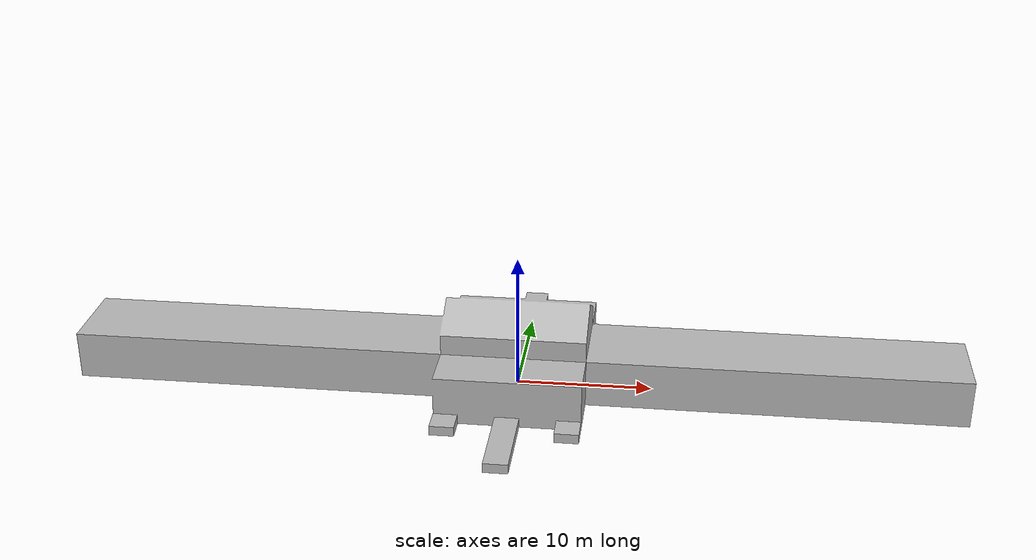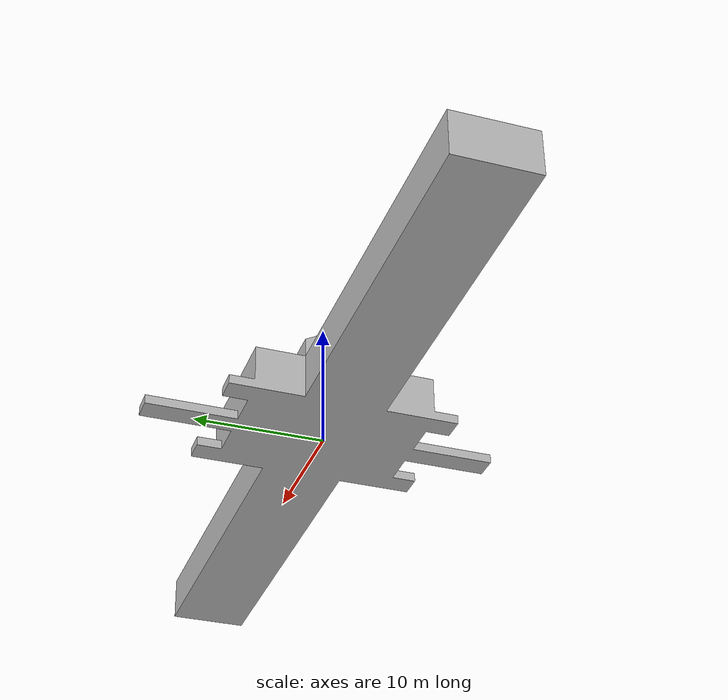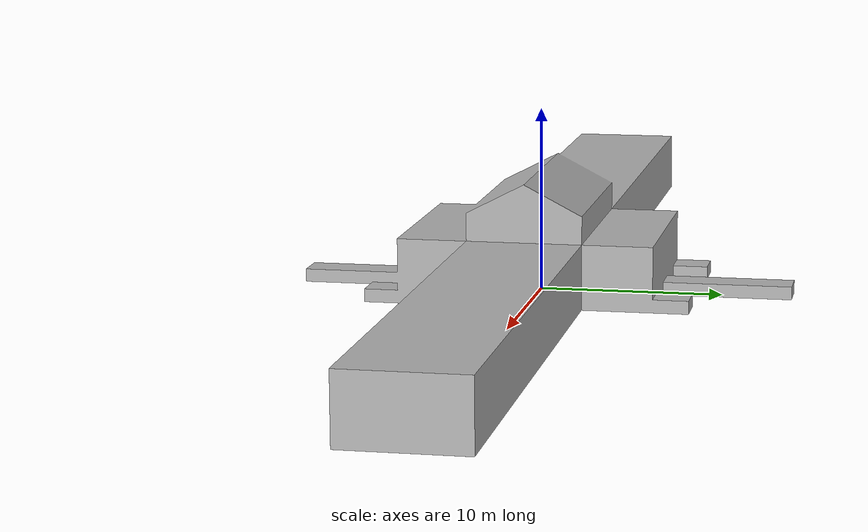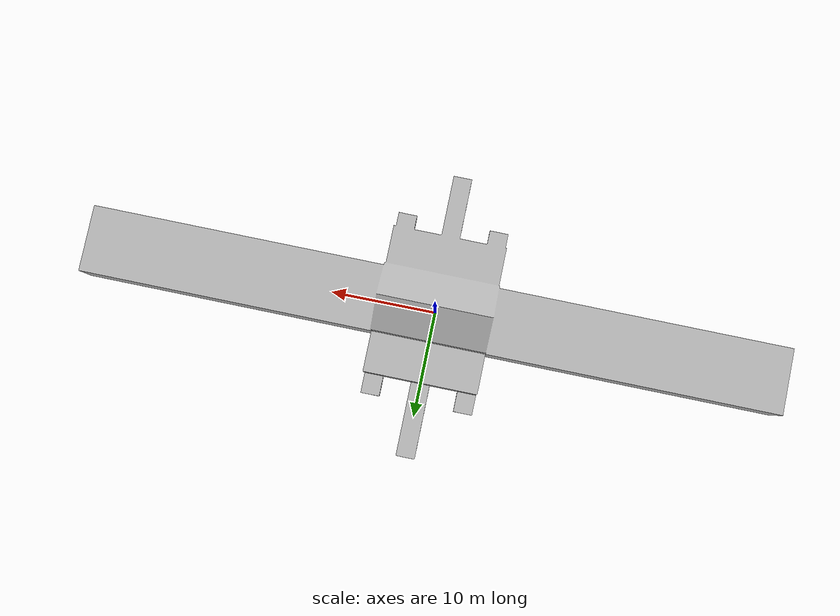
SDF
<?xml version="1.0" ?>
<sdf version="1.4">
  <model name="transdec_bridge">
    <static>true</static>
    <link name="link">
      <pose>0 0 0 0 0 0</pose>
      <must_be_base_link>1</must_be_base_link>
      <collision name="collision">
        <geometry>
          <mesh>
            <uri>model://gate/meshes/transdec_bridge.dae</uri>
          </mesh>
        </geometry>
      </collision>
      <visual name="visual">
        <cast_shadows>false</cast_shadows>
        <geometry>
          <mesh>
            <uri>model://gate/meshes/transdec_bridge.dae</uri>
          </mesh>
        </geometry>
      </visual>
    </link>
  </model>
</sdf>
